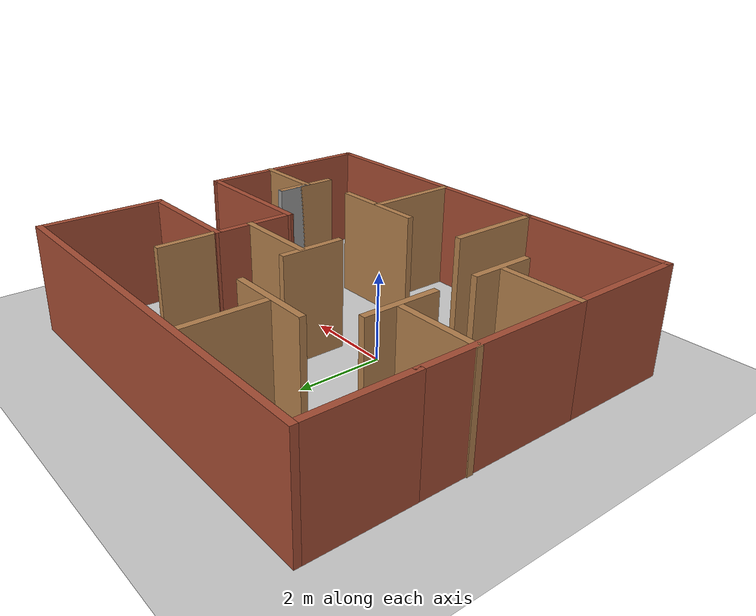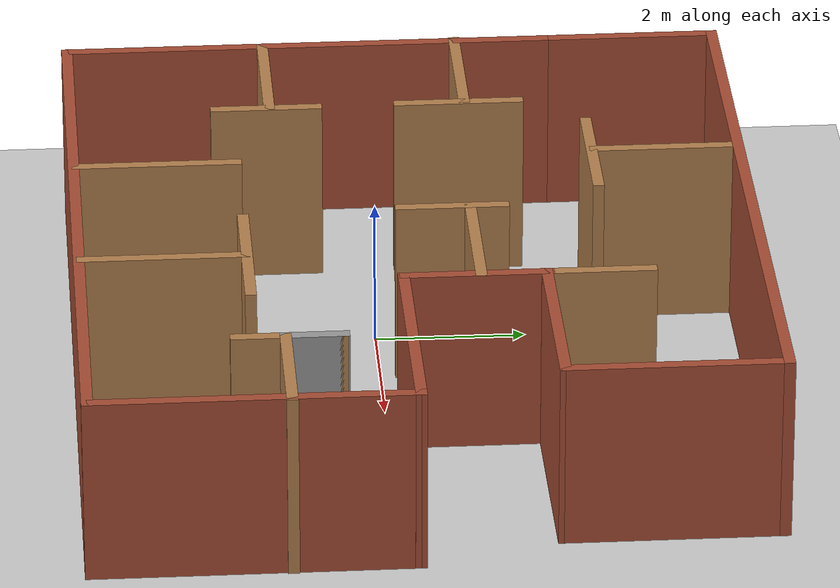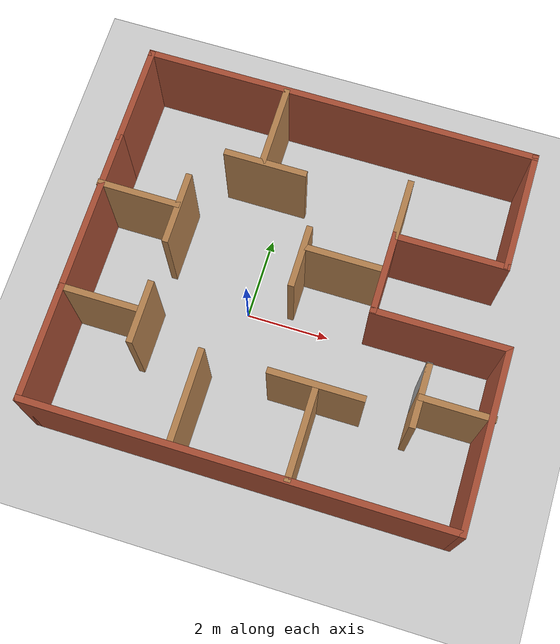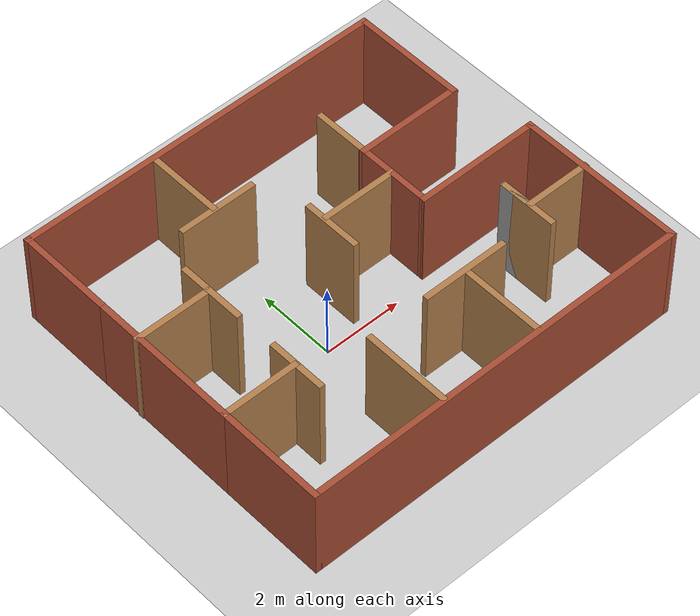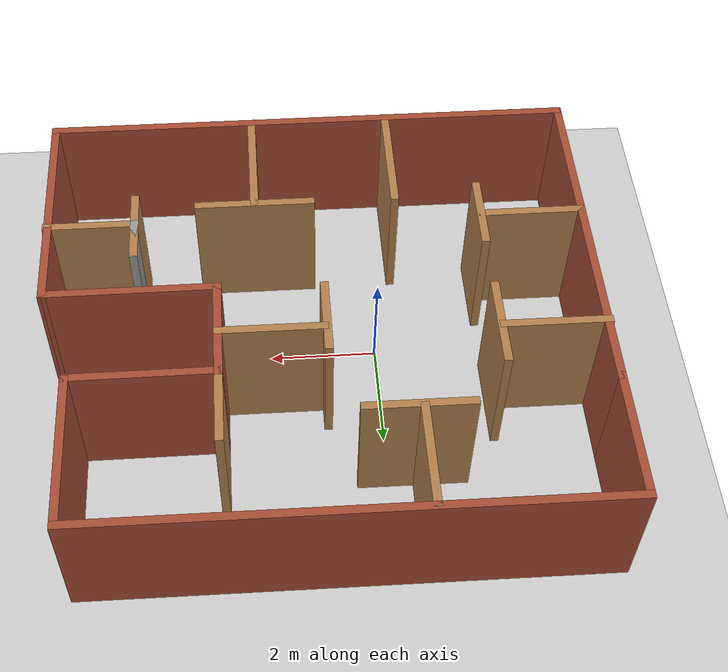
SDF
<sdf version="1.7">
 <world name="default">
  <light name="sun" type="directional">
   <pose>0 0 10 0 -0 0</pose>
   <diffuse>0.8 0.8 0.8 1</diffuse>
   <specular>0.2 0.2 0.2 1</specular>
   <attenuation>
    <range>1000</range>
    <constant>0.9</constant>
    <linear>0.01</linear>
    <quadratic>0.001</quadratic>
   </attenuation>
   <direction>-0.5 0.1 -0.9</direction>
   <spot><inner_angle>0</inner_angle><outer_angle>0</outer_angle><falloff>0</falloff></spot>
  </light>
  <model name="ground_plane">
   <static>1</static>
   <link name="link">
    <collision name="collision">
     <geometry><plane><normal>0 0 1</normal><size>100 100</size></plane></geometry>
     <surface>
      <contact><collide_bitmask>65535</collide_bitmask></contact>
      <friction><ode><mu>100</mu><mu2>50</mu2></ode></friction>
     </surface>
    </collision>
    <visual name="visual">
     <cast_shadows>0</cast_shadows>
     <geometry><plane><normal>0 0 1</normal><size>100 100</size></plane></geometry>
     <material>
      <script><uri>file://media/materials/scripts/gazebo.material</uri><name>Gazebo/Grey</name></script>
     </material>
    </visual>
   </link>
  </model>
  <gravity>0 0 -9.8</gravity>
  <magnetic_field>6e-06 2.3e-05 -4.2e-05</magnetic_field>
  <atmosphere type="adiabatic"/>
  <physics type="ode">
   <max_step_size>0.001</max_step_size>
   <real_time_factor>1</real_time_factor>
   <real_time_update_rate>1000</real_time_update_rate>
  </physics>
  <scene><ambient>0.4 0.4 0.4 1</ambient><background>0.7 0.7 0.7 1</background><shadows>1</shadows></scene>
  <spherical_coordinates>
   <surface_model>EARTH_WGS84</surface_model>
   <latitude_deg>0</latitude_deg>
   <longitude_deg>0</longitude_deg>
   <elevation>0</elevation>
   <heading_deg>0</heading_deg>
  </spherical_coordinates>
  <model name="bigHouse">
   <pose>1.05725 0.455249 0 0 -0 0</pose>
   <link name="Wall_0">
    <collision name="Wall_0_Collision">
     <geometry><box><size>4 0.15 2.5</size></box></geometry>
     <pose>0 0 1.25 0 -0 0</pose>
    </collision>
    <visual name="Wall_0_Visual">
     <pose>0 0 1.25 0 -0 0</pose>
     <geometry><box><size>4 0.15 2.5</size></box></geometry>
     <material>
      <script><uri>file://media/materials/scripts/gazebo.material</uri><name>Gazebo/Bricks</name></script>
      <ambient>1 1 1 1</ambient>
     </material>
     <meta><layer>0</layer></meta>
    </visual>
    <pose>-4.95789 0.17201 0 0 -0 -1.5708</pose>
   </link>
   <link name="Wall_10">
    <collision name="Wall_10_Collision">
     <geometry><box><size>9.56306 0.15 2.5</size></box></geometry>
     <pose>0 0 1.25 0 -0 0</pose>
    </collision>
    <visual name="Wall_10_Visual">
     <pose>0 0 1.25 0 -0 0</pose>
     <geometry><box><size>9.56306 0.15 2.5</size></box></geometry>
     <material>
      <script><uri>file://media/materials/scripts/gazebo.material</uri><name>Gazebo/Bricks</name></script>
      <ambient>1 1 1 1</ambient>
     </material>
     <meta><layer>0</layer></meta>
    </visual>
    <pose>-0.251361 4.4237 0 0 -0 3.14159</pose>
   </link>
   <link name="Wall_11">
    <collision name="Wall_11_Collision">
     <geometry><box><size>2.4592 0.15 2.5</size></box></geometry>
     <pose>0 0 1.25 0 -0 0</pose>
    </collision>
    <visual name="Wall_11_Visual">
     <pose>0 0 1.25 0 -0 0</pose>
     <geometry><box><size>2.4592 0.15 2.5</size></box></geometry>
     <material>
      <script><uri>file://media/materials/scripts/gazebo.material</uri><name>Gazebo/Bricks</name></script>
      <ambient>1 1 1 1</ambient>
     </material>
     <meta><layer>0</layer></meta>
    </visual>
    <pose>-4.95789 3.25161 0 0 -0 -1.5708</pose>
   </link>
   <link name="Wall_13">
    <collision name="Wall_13_Collision">
     <geometry><box><size>2.25 0.15 2.5</size></box></geometry>
     <pose>0 0 1.25 0 -0 0</pose>
    </collision>
    <visual name="Wall_13_Visual">
     <pose>0 0 1.25 0 -0 0</pose>
     <geometry><box><size>2.25 0.15 2.5</size></box></geometry>
     <material>
      <script><uri>file://media/materials/scripts/gazebo.material</uri><name>Gazebo/Wood</name></script>
      <ambient>1 1 1 1</ambient>
     </material>
     <meta><layer>0</layer></meta>
    </visual>
    <pose>1.13085 -3.33017 0 0 -0 1.5708</pose>
   </link>
   <link name="Wall_17">
    <collision name="Wall_17_Collision">
     <geometry><box><size>2.25 0.15 2.5</size></box></geometry>
     <pose>0 0 1.25 0 -0 0</pose>
    </collision>
    <visual name="Wall_17_Visual">
     <pose>0 0 1.25 0 -0 0</pose>
     <geometry><box><size>2.25 0.15 2.5</size></box></geometry>
     <material>
      <script><uri>file://media/materials/scripts/gazebo.material</uri><name>Gazebo/Wood</name></script>
      <ambient>1 1 1 1</ambient>
     </material>
     <meta><layer>0</layer></meta>
    </visual>
    <pose>-1.50987 -3.32026 0 0 -0 -1.5708</pose>
   </link>
   <link name="Wall_19">
    <collision name="Wall_19_Collision">
     <geometry><box><size>2 0.15 2.5</size></box></geometry>
     <pose>0 0 1.25 0 -0 0</pose>
    </collision>
    <visual name="Wall_19_Visual">
     <pose>0 0 1.25 0 -0 0</pose>
     <geometry><box><size>2 0.15 2.5</size></box></geometry>
     <material>
      <script><uri>file://media/materials/scripts/gazebo.material</uri><name>Gazebo/Wood</name></script>
      <ambient>1 1 1 1</ambient>
     </material>
     <meta><layer>0</layer></meta>
    </visual>
    <pose>-4.03289 -1.75299 0 0 -0 0</pose>
   </link>
   <link name="Wall_2">
    <collision name="Wall_2_Collision">
     <geometry><box><size>2.82066 0.15 2.5</size></box></geometry>
     <pose>0 0 1.25 0 -0 0</pose>
    </collision>
    <visual name="Wall_2_Visual">
     <pose>0 0 1.25 0 -0 0</pose>
     <geometry><box><size>2.82066 0.15 2.5</size></box></geometry>
     <material>
      <script><uri>file://media/materials/scripts/gazebo.material</uri><name>Gazebo/Bricks</name></script>
      <ambient>1 1 1 1</ambient>
     </material>
     <meta><layer>0</layer></meta>
    </visual>
    <pose>-4.95789 -3.08832 0 0 -0 -1.5708</pose>
   </link>
   <link name="Wall_24">
    <collision name="Wall_24_Collision">
     <geometry><box><size>1.5 0.15 2.5</size></box></geometry>
     <pose>0 0 1.25 0 -0 0</pose>
    </collision>
    <visual name="Wall_24_Visual">
     <pose>0 0 1.25 0 -0 0</pose>
     <geometry><box><size>1.5 0.15 2.5</size></box></geometry>
     <material>
      <script><uri>file://media/materials/scripts/gazebo.material</uri><name>Gazebo/Wood</name></script>
      <ambient>1 1 1 1</ambient>
     </material>
     <meta><layer>0</layer></meta>
    </visual>
    <pose>-3.07835 -1.79339 0 0 -0 -1.5708</pose>
   </link>
   <link name="Wall_26">
    <collision name="Wall_26_Collision">
     <geometry><box><size>2 0.15 2.5</size></box></geometry>
     <pose>0 0 1.25 0 -0 0</pose>
    </collision>
    <visual name="Wall_26_Visual">
     <pose>0 0 1.25 0 -0 0</pose>
     <geometry><box><size>2 0.15 2.5</size></box></geometry>
     <material>
      <script><uri>file://media/materials/scripts/gazebo.material</uri><name>Gazebo/Wood</name></script>
      <ambient>1 1 1 1</ambient>
     </material>
     <meta><layer>0</layer></meta>
    </visual>
    <pose>-4.05648 0.878141 0 0 -0 0</pose>
   </link>
   <link name="Wall_28">
    <collision name="Wall_28_Collision">
     <geometry><box><size>1.75 0.15 2.5</size></box></geometry>
     <pose>0 0 1.25 0 -0 0</pose>
    </collision>
    <visual name="Wall_28_Visual">
     <pose>0 0 1.25 0 -0 0</pose>
     <geometry><box><size>1.75 0.15 2.5</size></box></geometry>
     <material>
      <script><uri>file://media/materials/scripts/gazebo.material</uri><name>Gazebo/Wood</name></script>
      <ambient>1 1 1 1</ambient>
     </material>
     <meta><layer>0</layer></meta>
    </visual>
    <pose>-3.09512 0.801753 0 0 -0 -1.5708</pose>
   </link>
   <link name="Wall_3">
    <collision name="Wall_3_Collision">
     <geometry><box><size>10.0659 0.15 2.5</size></box></geometry>
     <pose>0 0 1.25 0 -0 0</pose>
    </collision>
    <visual name="Wall_3_Visual">
     <pose>0 0 1.25 0 -0 0</pose>
     <geometry><box><size>10.0659 0.15 2.5</size></box></geometry>
     <material>
      <script><uri>file://media/materials/scripts/gazebo.material</uri><name>Gazebo/Bricks</name></script>
      <ambient>1 1 1 1</ambient>
     </material>
     <meta><layer>0</layer></meta>
    </visual>
    <pose>5.8e-05 -4.42365 0 0 -0 0</pose>
   </link>
   <link name="Wall_36">
    <collision name="Wall_36_Collision">
     <geometry><box><size>2 0.15 2.5</size></box></geometry>
     <pose>0 0 1.25 0 -0 0</pose>
    </collision>
    <visual name="Wall_36_Visual">
     <pose>0 0 1.25 0 -0 0</pose>
     <geometry><box><size>2 0.15 2.5</size></box></geometry>
     <material>
      <script><uri>file://media/materials/scripts/gazebo.material</uri><name>Gazebo/Wood</name></script>
      <ambient>1 1 1 1</ambient>
     </material>
     <meta><layer>0</layer></meta>
    </visual>
    <pose>-1.49816 2.46511 0 0 -0 3.14159</pose>
   </link>
   <link name="Wall_38">
    <collision name="Wall_38_Collision">
     <geometry><box><size>2 0.15 2.5</size></box></geometry>
     <pose>0 0 1.25 0 -0 0</pose>
    </collision>
    <visual name="Wall_38_Visual">
     <pose>0 0 1.25 0 -0 0</pose>
     <geometry><box><size>2 0.15 2.5</size></box></geometry>
     <material>
      <script><uri>file://media/materials/scripts/gazebo.material</uri><name>Gazebo/Wood</name></script>
      <ambient>1 1 1 1</ambient>
     </material>
     <meta><layer>0</layer></meta>
    </visual>
    <pose>0.923302 0.734452 0 0 -0 3.14159</pose>
   </link>
   <link name="Wall_4">
    <collision name="Wall_4_Collision">
     <geometry><box><size>4.32077 0.15 2.5</size></box></geometry>
     <pose>0 0 1.25 0 -0 0</pose>
    </collision>
    <visual name="Wall_4_Visual">
     <pose>0 0 1.25 0 -0 0</pose>
     <geometry><box><size>4.32077 0.15 2.5</size></box></geometry>
     <material>
      <script><uri>file://media/materials/scripts/gazebo.material</uri><name>Gazebo/Bricks</name></script>
      <ambient>1 1 1 1</ambient>
     </material>
     <meta><layer>0</layer></meta>
    </visual>
    <pose>4.95801 -2.33832 0 0 -0 1.5708</pose>
   </link>
   <link name="Wall_40">
    <collision name="Wall_40_Collision">
     <geometry><box><size>1.5 0.15 2.5</size></box></geometry>
     <pose>0 0 1.25 0 -0 0</pose>
    </collision>
    <visual name="Wall_40_Visual">
     <pose>0 0 1.25 0 -0 0</pose>
     <geometry><box><size>1.5 0.15 2.5</size></box></geometry>
     <material>
      <script><uri>file://media/materials/scripts/gazebo.material</uri><name>Gazebo/Wood</name></script>
      <ambient>1 1 1 1</ambient>
     </material>
     <meta><layer>0</layer></meta>
    </visual>
    <pose>-0.058115 0.496703 0 0 -0 -1.5708</pose>
   </link>
   <link name="Wall_42">
    <collision name="Wall_42_Collision">
     <geometry><box><size>1.75 0.15 2.5</size></box></geometry>
     <pose>0 0 1.25 0 -0 0</pose>
    </collision>
    <visual name="Wall_42_Visual">
     <pose>0 0 1.25 0 -0 0</pose>
     <geometry><box><size>1.75 0.15 2.5</size></box></geometry>
     <material>
      <script><uri>file://media/materials/scripts/gazebo.material</uri><name>Gazebo/Wood</name></script>
      <ambient>1 1 1 1</ambient>
     </material>
     <meta><layer>0</layer></meta>
    </visual>
    <pose>4.18148 -1.86508 0 0 -0 3.14159</pose>
   </link>
   <link name="Wall_43">
    <collision name="Wall_43_Collision">
     <geometry><box><size>0.890795 0.15 2.5</size></box></geometry>
     <pose>0 0 1.25 0 -0 0</pose>
    </collision>
    <visual name="Wall_43_Visual">
     <pose>0 0 1.25 0 -0 0</pose>
     <geometry><box><size>0.890795 0.15 2.5</size></box></geometry>
     <material>
      <script><uri>file://media/materials/scripts/gazebo.material</uri><name>Gazebo/Grey</name></script>
      <ambient>1 1 1 1</ambient>
     </material>
     <meta><layer>0</layer></meta>
    </visual>
    <pose>3.36137 -1.49468 0 0 -0 1.5708</pose>
   </link>
   <link name="Wall_44">
    <collision name="Wall_44_Collision">
     <geometry><box><size>1.5 0.15 2.5</size></box></geometry>
     <pose>0 0 1.25 0 -0 0</pose>
    </collision>
    <visual name="Wall_44_Visual">
     <pose>0 0 1.25 0 -0 0</pose>
     <geometry><box><size>1.5 0.15 2.5</size></box></geometry>
     <material>
      <script><uri>file://media/materials/scripts/gazebo.material</uri><name>Gazebo/Wood</name></script>
      <ambient>1 1 1 1</ambient>
     </material>
     <meta><layer>0</layer></meta>
    </visual>
    <pose>3.36137 -1.8194 0 0 -0 -1.5708</pose>
   </link>
   <link name="Wall_46">
    <collision name="Wall_46_Collision">
     <geometry><box><size>2 0.15 2.5</size></box></geometry>
     <pose>0 0 1.25 0 -0 0</pose>
    </collision>
    <visual name="Wall_46_Visual">
     <pose>0 0 1.25 0 -0 0</pose>
     <geometry><box><size>2 0.15 2.5</size></box></geometry>
     <material>
      <script><uri>file://media/materials/scripts/gazebo.material</uri><name>Gazebo/Wood</name></script>
      <ambient>1 1 1 1</ambient>
     </material>
     <meta><layer>0</layer></meta>
    </visual>
    <pose>-1.57272 3.43839 0 0 -0 -1.5708</pose>
   </link>
   <link name="Wall_48">
    <collision name="Wall_48_Collision">
     <geometry><box><size>1.5 0.15 2.5</size></box></geometry>
     <pose>0 0 1.25 0 -0 0</pose>
    </collision>
    <visual name="Wall_48_Visual">
     <pose>0 0 1.25 0 -0 0</pose>
     <geometry><box><size>1.5 0.15 2.5</size></box></geometry>
     <material>
      <script><uri>file://media/materials/scripts/gazebo.material</uri><name>Gazebo/Wood</name></script>
      <ambient>1 1 1 1</ambient>
     </material>
     <meta><layer>0</layer></meta>
    </visual>
    <pose>1.85292 2.25838 0 0 -0 1.5708</pose>
   </link>
   <link name="Wall_5">
    <collision name="Wall_5_Collision">
     <geometry><box><size>3.25512 0.15 2.5</size></box></geometry>
     <pose>0 0 1.25 0 -0 0</pose>
    </collision>
    <visual name="Wall_5_Visual">
     <pose>0 0 1.25 0 -0 0</pose>
     <geometry><box><size>3.25512 0.15 2.5</size></box></geometry>
     <material>
      <script><uri>file://media/materials/scripts/gazebo.material</uri><name>Gazebo/Bricks</name></script>
      <ambient>1 1 1 1</ambient>
     </material>
     <meta><layer>0</layer></meta>
    </visual>
    <pose>3.40546 -0.259804 0 0 -0 -3.1372</pose>
   </link>
   <link name="Wall_50">
    <collision name="Wall_50_Collision">
     <geometry><box><size>2.25 0.15 2.5</size></box></geometry>
     <pose>0 0 1.25 0 -0 0</pose>
    </collision>
    <visual name="Wall_50_Visual">
     <pose>0 0 1.25 0 -0 0</pose>
     <geometry><box><size>2.25 0.15 2.5</size></box></geometry>
     <material>
      <script><uri>file://media/materials/scripts/gazebo.material</uri><name>Gazebo/Wood</name></script>
      <ambient>1 1 1 1</ambient>
     </material>
     <meta><layer>0</layer></meta>
    </visual>
    <pose>1.1253 -2.25092 0 0 -0 0</pose>
   </link>
   <link name="Wall_6">
    <collision name="Wall_6_Collision">
     <geometry><box><size>2 0.15 2.5</size></box></geometry>
     <pose>0 0 1.25 0 -0 0</pose>
    </collision>
    <visual name="Wall_6_Visual">
     <pose>0 0 1.25 0 -0 0</pose>
     <geometry><box><size>2 0.15 2.5</size></box></geometry>
     <material>
      <script><uri>file://media/materials/scripts/gazebo.material</uri><name>Gazebo/Bricks</name></script>
      <ambient>1 1 1 1</ambient>
     </material>
     <meta><layer>0</layer></meta>
    </visual>
    <pose>1.85292 0.678497 0 0 -0 1.5708</pose>
   </link>
   <link name="Wall_7">
    <collision name="Wall_7_Collision">
     <geometry><box><size>2.75229 0.15 2.5</size></box></geometry>
     <pose>0 0 1.25 0 -0 0</pose>
    </collision>
    <visual name="Wall_7_Visual">
     <pose>0 0 1.25 0 -0 0</pose>
     <geometry><box><size>2.75229 0.15 2.5</size></box></geometry>
     <material>
      <script><uri>file://media/materials/scripts/gazebo.material</uri><name>Gazebo/Bricks</name></script>
      <ambient>1 1 1 1</ambient>
     </material>
     <meta><layer>0</layer></meta>
    </visual>
    <pose>3.15404 1.5902 0 0 -0 0.005237</pose>
   </link>
   <link name="Wall_9">
    <collision name="Wall_9_Collision">
     <geometry><box><size>2.93909 0.15 2.5</size></box></geometry>
     <pose>0 0 1.25 0 -0 0</pose>
    </collision>
    <visual name="Wall_9_Visual">
     <pose>0 0 1.25 0 -0 0</pose>
     <geometry><box><size>2.93909 0.15 2.5</size></box></geometry>
     <material>
      <script><uri>file://media/materials/scripts/gazebo.material</uri><name>Gazebo/Bricks</name></script>
      <ambient>1 1 1 1</ambient>
     </material>
     <meta><layer>0</layer></meta>
    </visual>
    <pose>4.45517 3.01167 0 0 -0 1.5708</pose>
   </link>
   <static>1</static>
  </model>
 </world>
</sdf>
